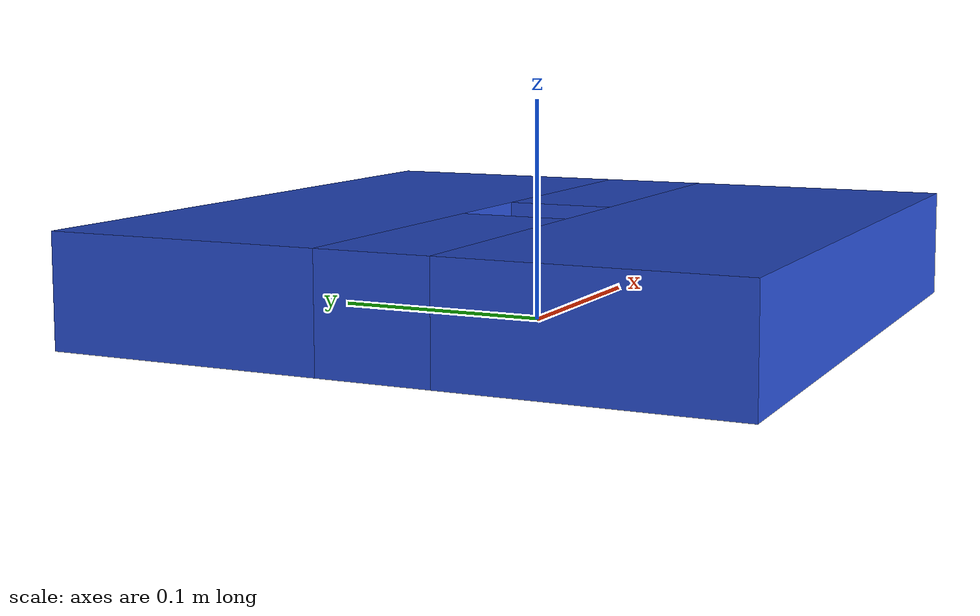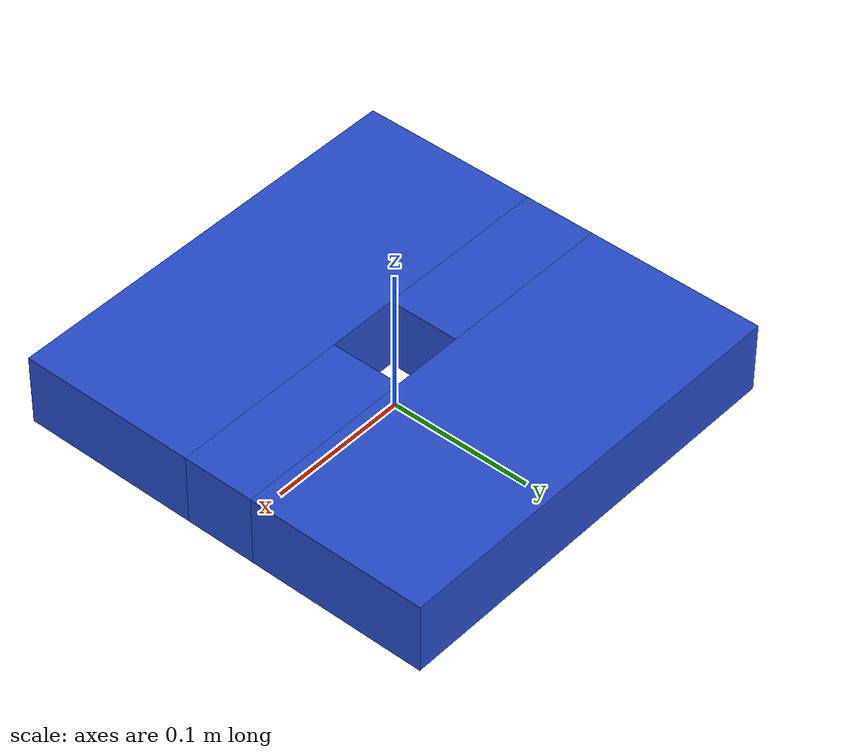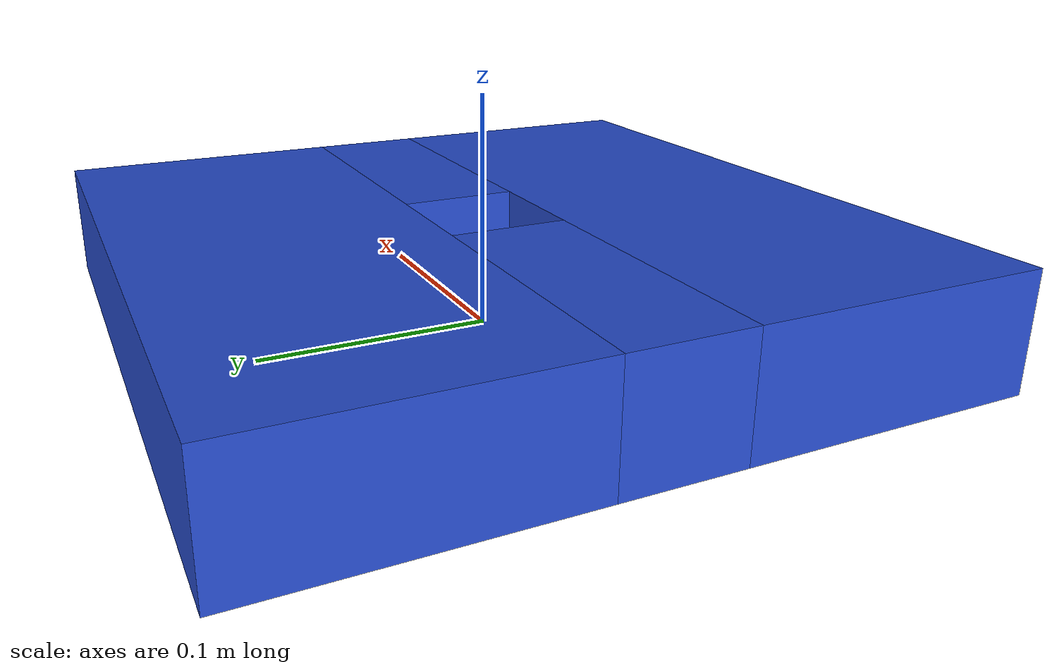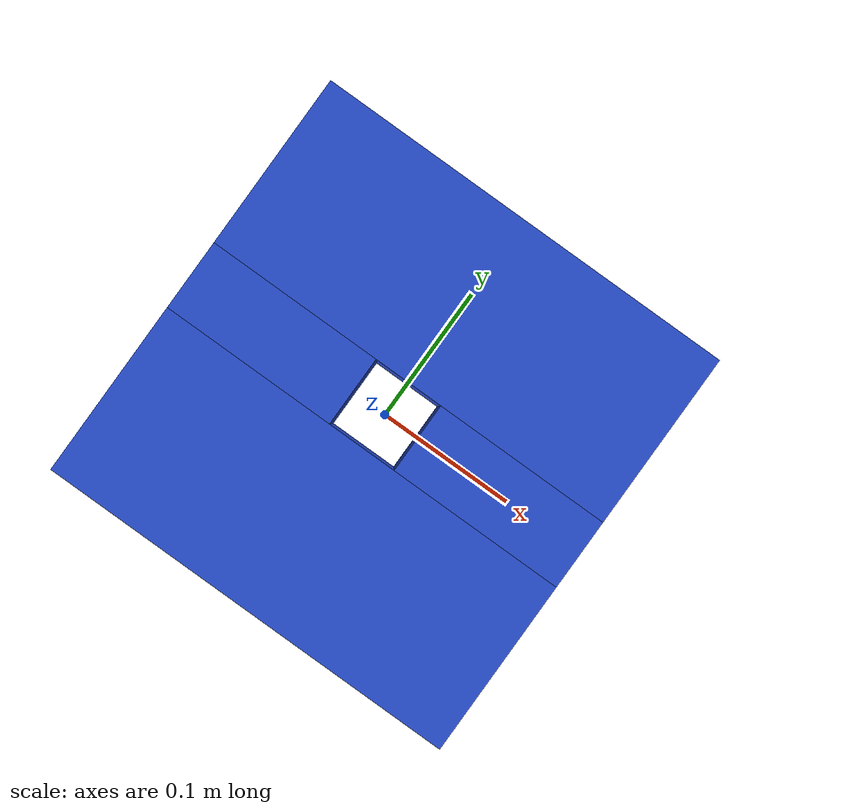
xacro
<?xml version="1.0"?>
<robot xmlns:xacro="http://www.ros.org/wiki/xacro" name="square_peg_receptacle">

<xacro:property name="x_dim_outer" value="0.3" />
<xacro:property name="y_dim_outer" value="0.3" />
<xacro:property name="x_dim_inner" value="0.05" />
<xacro:property name="y_dim_inner" value="0.05" />
<xacro:property name="z_dim" value="0.05" />

<!-- macro for making default inertial mass-->
<xacro:macro name="default_inertial" params="mass">
    <inertial>
            <mass value="${mass}" />
            <inertia ixx="1.0" ixy="0.0" ixz="0.0"
                 iyy="1.0" iyz="0.0"
                 izz="1.0" />
    </inertial>
</xacro:macro>

<!-- macro for making default box-->
<xacro:macro name="rectangle" params="x_dim y_dim z_dim">
    <visual>
        <geometry>
            <box size="${x_dim} ${y_dim} ${z_dim}"/>
        </geometry>
        <material name="blue"/>
    </visual>
    <collision>
        <geometry>
            <box size="${x_dim} ${y_dim} ${z_dim}"/>
        </geometry>
    </collision>
    <xacro:default_inertial mass="1"/>
    <contact_coefficients mu="0.0" kp="1000" kd="1" />
    <!-- A bunch of stuff cut -->
</xacro:macro>

    <link name="base_link"/>

    <joint name="base_to_bottom" type="fixed">
        <origin rpy="0 0 0" xyz="0 ${-y_dim_inner/2.0 - (y_dim_outer - y_dim_inner)/4.0} ${z_dim/2.0}"/>
        <parent link="base_link"/>
        <child link="bottom_link"/>
    </joint>

    <link name="bottom_link">
        <xacro:rectangle x_dim="${x_dim_outer}" y_dim="${(y_dim_outer - y_dim_inner)/2.0}" z_dim="${z_dim}"/>
    </link>

    <joint name="base_to_top" type="fixed">
        <origin rpy="0 0 0" xyz="0 ${y_dim_inner/2.0 + (y_dim_outer - y_dim_inner)/4.0} ${z_dim/2.0}"/>
        <parent link="base_link"/>
        <child link="top_link"/>
    </joint>

    <link name="top_link">
        <xacro:rectangle x_dim="${x_dim_outer}" y_dim="${(y_dim_outer - y_dim_inner)/2.0}" z_dim="${z_dim}"/>
    </link>

    <joint name="base_to_left" type="fixed">
        <origin rpy="0 0 0" xyz="${-(x_dim_inner/2.0 + (x_dim_outer - x_dim_inner)/4.0)} 0 ${z_dim/2.0}"/>
        <parent link="base_link"/>
        <child link="left_link"/>
    </joint>

    <link name="left_link">
        <xacro:rectangle x_dim="${(x_dim_outer - x_dim_inner)/2.0}" y_dim="${y_dim_inner}" z_dim="${z_dim}"/>
    </link>

    <joint name="base_to_right" type="fixed">
        <origin rpy="0 0 0" xyz="${(x_dim_inner/2.0 + (x_dim_outer - x_dim_inner)/4.0)} 0 ${z_dim/2.0}"/>
        <parent link="base_link"/>
        <child link="right_link"/>
    </joint>

    <link name="right_link">
        <xacro:rectangle x_dim="${(x_dim_outer - x_dim_inner)/2.0}" y_dim="${y_dim_inner}" z_dim="${z_dim}"/>
    </link>

</robot>
